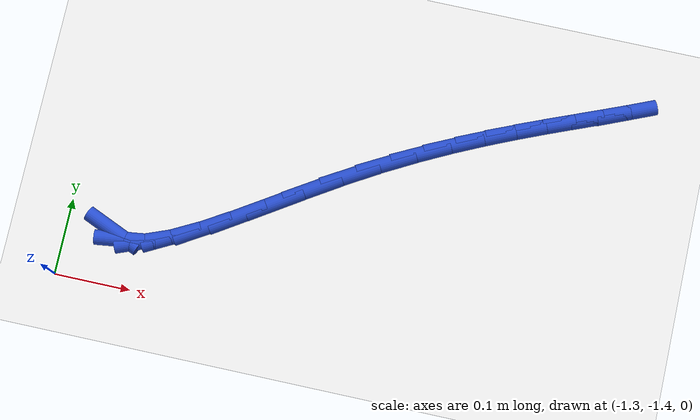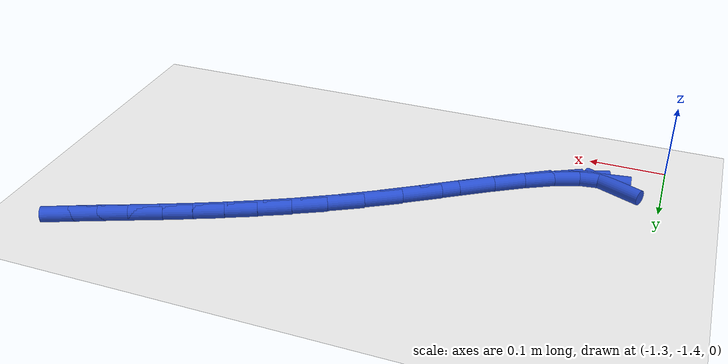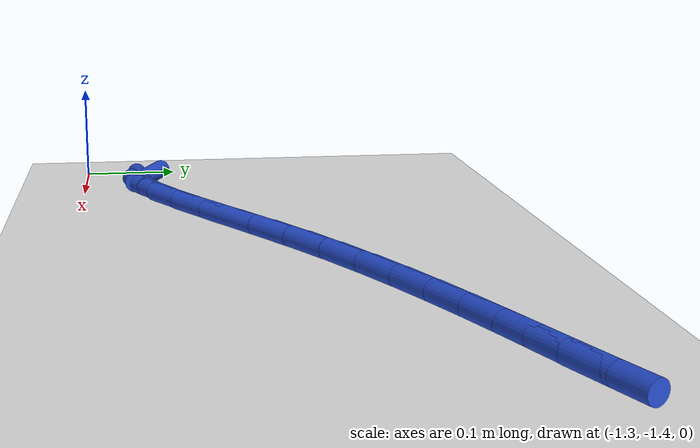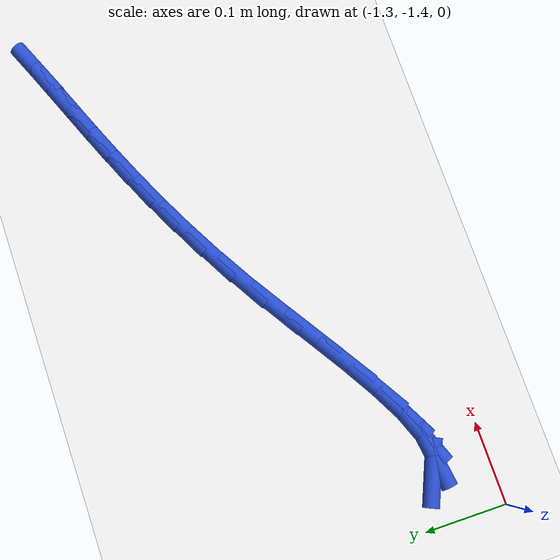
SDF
<sdf version="1.6">
 <world name="default">
  <model name="ground_plane">
   <static>1</static>
   <link name="link">
    <collision name="collision">
     <geometry><plane><normal>0 0 1</normal><size>100 100</size></plane></geometry>
     <surface><friction><ode><mu>100</mu><mu2>50</mu2></ode></friction></surface>
    </collision>
    <visual name="visual">
     <cast_shadows>0</cast_shadows>
     <geometry><plane><normal>0 0 1</normal><size>100 100</size></plane></geometry>
     <material>
      <script><uri>file://media/materials/scripts/gazebo.material</uri><name>Gazebo/WhiteGlow</name></script>
     </material>
    </visual>
   </link>
  </model>
  <model name="line">
   <link name="link_158">
    <pose>-1.2376756816354901 -1.3301424803309438 0.01 0 1.57 -0.4070176500881682</pose>
    <collision name="collision">
     <geometry><cylinder><radius>0.01</radius><length>0.08</length></cylinder></geometry>
    </collision>
    <visual name="visual">
     <material>
      <script><name>Gazebo/Blue</name><uri>file://media/materials/scripts/gazebo.material</uri></script>
     </material>
     <geometry><cylinder><radius>0.01</radius><length>0.08</length></cylinder></geometry>
    </visual>
   </link>
   <link name="link_159">
    <pose>-1.2197020864569703 -1.3378907184763384 0.01 0 1.57 0.13075426205785304</pose>
    <collision name="collision">
     <geometry><cylinder><radius>0.01</radius><length>0.08</length></cylinder></geometry>
    </collision>
    <visual name="visual">
     <material>
      <script><name>Gazebo/Blue</name><uri>file://media/materials/scripts/gazebo.material</uri></script>
     </material>
     <geometry><cylinder><radius>0.01</radius><length>0.08</length></cylinder></geometry>
    </visual>
   </link>
   <link name="link_160">
    <pose>-1.1941362032200915 -1.3345286885596754 0.01 0 1.57 0.37276425491820003</pose>
    <collision name="collision">
     <geometry><cylinder><radius>0.01</radius><length>0.08</length></cylinder></geometry>
    </collision>
    <visual name="visual">
     <material>
      <script><name>Gazebo/Blue</name><uri>file://media/materials/scripts/gazebo.material</uri></script>
     </material>
     <geometry><cylinder><radius>0.01</radius><length>0.08</length></cylinder></geometry>
    </visual>
   </link>
   <link name="link_161">
    <pose>-1.1622740641665366 -1.3220691046603834 0.01 0 1.57 0.48751468851987395</pose>
    <collision name="collision">
     <geometry><cylinder><radius>0.01</radius><length>0.08</length></cylinder></geometry>
    </collision>
    <visual name="visual">
     <material>
      <script><name>Gazebo/Blue</name><uri>file://media/materials/scripts/gazebo.material</uri></script>
     </material>
     <geometry><cylinder><radius>0.01</radius><length>0.08</length></cylinder></geometry>
    </visual>
   </link>
   <link name="link_162">
    <pose>-1.125411701537988 -1.3025246808578905 0.01 0 1.57 0.5454182809382719</pose>
    <collision name="collision">
     <geometry><cylinder><radius>0.01</radius><length>0.08</length></cylinder></geometry>
    </collision>
    <visual name="visual">
     <material>
      <script><name>Gazebo/Blue</name><uri>file://media/materials/scripts/gazebo.material</uri></script>
     </material>
     <geometry><cylinder><radius>0.01</radius><length>0.08</length></cylinder></geometry>
    </visual>
   </link>
   <link name="link_163">
    <pose>-1.0848451475761287 -1.277908131231626 0.01 0 1.57 0.572149772631056</pose>
    <collision name="collision">
     <geometry><cylinder><radius>0.01</radius><length>0.08</length></cylinder></geometry>
    </collision>
    <visual name="visual">
     <material>
      <script><name>Gazebo/Blue</name><uri>file://media/materials/scripts/gazebo.material</uri></script>
     </material>
     <geometry><cylinder><radius>0.01</radius><length>0.08</length></cylinder></geometry>
    </visual>
   </link>
   <link name="link_164">
    <pose>-1.0418704345226402 -1.2502321698610173 0.01 0 1.57 0.5774302985780936</pose>
    <collision name="collision">
     <geometry><cylinder><radius>0.01</radius><length>0.08</length></cylinder></geometry>
    </collision>
    <visual name="visual">
     <material>
      <script><name>Gazebo/Blue</name><uri>file://media/materials/scripts/gazebo.material</uri></script>
     </material>
     <geometry><cylinder><radius>0.01</radius><length>0.08</length></cylinder></geometry>
    </visual>
   </link>
   <link name="link_165">
    <pose>-0.9977835946192073 -1.221509510825494 0.01 0 1.57 0.563779746150697</pose>
    <collision name="collision">
     <geometry><cylinder><radius>0.01</radius><length>0.08</length></cylinder></geometry>
    </collision>
    <visual name="visual">
     <material>
      <script><name>Gazebo/Blue</name><uri>file://media/materials/scripts/gazebo.material</uri></script>
     </material>
     <geometry><cylinder><radius>0.01</radius><length>0.08</length></cylinder></geometry>
    </visual>
   </link>
   <link name="link_166">
    <pose>-0.9538806601022569 -1.1937528681952625 0.01 0 1.57 0.5332006398413002</pose>
    <collision name="collision">
     <geometry><cylinder><radius>0.01</radius><length>0.08</length></cylinder></geometry>
    </collision>
    <visual name="visual">
     <material>
      <script><name>Gazebo/Blue</name><uri>file://media/materials/scripts/gazebo.material</uri></script>
     </material>
     <geometry><cylinder><radius>0.01</radius><length>0.08</length></cylinder></geometry>
    </visual>
   </link>
   <link name="link_167">
    <pose>-0.9112334246804238 -1.1685814241091637 0.01 0 1.57 0.5002824045721845</pose>
    <collision name="collision">
     <geometry><cylinder><radius>0.01</radius><length>0.08</length></cylinder></geometry>
    </collision>
    <visual name="visual">
     <material>
      <script><name>Gazebo/Blue</name><uri>file://media/materials/scripts/gazebo.material</uri></script>
     </material>
     <geometry><cylinder><radius>0.01</radius><length>0.08</length></cylinder></geometry>
    </visual>
   </link>
   <link name="link_168">
    <pose>-0.8700244173554632 -1.146053727655878 0.01 0 1.57 0.4698157043153478</pose>
    <collision name="collision">
     <geometry><cylinder><radius>0.01</radius><length>0.08</length></cylinder></geometry>
    </collision>
    <visual name="visual">
     <material>
      <script><name>Gazebo/Blue</name><uri>file://media/materials/scripts/gazebo.material</uri></script>
     </material>
     <geometry><cylinder><radius>0.01</radius><length>0.08</length></cylinder></geometry>
    </visual>
   </link>
   <link name="link_169">
    <pose>-0.8302157568520249 -1.12584151445855 0.01 0 1.57 0.44266392298235197</pose>
    <collision name="collision">
     <geometry><cylinder><radius>0.01</radius><length>0.08</length></cylinder></geometry>
    </collision>
    <visual name="visual">
     <material>
      <script><name>Gazebo/Blue</name><uri>file://media/materials/scripts/gazebo.material</uri></script>
     </material>
     <geometry><cylinder><radius>0.01</radius><length>0.08</length></cylinder></geometry>
    </visual>
   </link>
   <link name="link_170">
    <pose>-0.791769561894758 -1.107616520140326 0.01 0 1.57 0.41974275592650495</pose>
    <collision name="collision">
     <geometry><cylinder><radius>0.01</radius><length>0.08</length></cylinder></geometry>
    </collision>
    <visual name="visual">
     <material>
      <script><name>Gazebo/Blue</name><uri>file://media/materials/scripts/gazebo.material</uri></script>
     </material>
     <geometry><cylinder><radius>0.01</radius><length>0.08</length></cylinder></geometry>
    </visual>
   </link>
   <link name="link_171">
    <pose>-0.7546479512083152 -1.0910504803243526 0.01 0 1.57 0.40200096960627235</pose>
    <collision name="collision">
     <geometry><cylinder><radius>0.01</radius><length>0.08</length></cylinder></geometry>
    </collision>
    <visual name="visual">
     <material>
      <script><name>Gazebo/Blue</name><uri>file://media/materials/scripts/gazebo.material</uri></script>
     </material>
     <geometry><cylinder><radius>0.01</radius><length>0.08</length></cylinder></geometry>
    </visual>
   </link>
   <link name="link_172">
    <pose>-0.7188130435173451 -1.0758151306337753 0.01 0 1.57 0.39039922513906555</pose>
    <collision name="collision">
     <geometry><cylinder><radius>0.01</radius><length>0.08</length></cylinder></geometry>
    </collision>
    <visual name="visual">
     <material>
      <script><name>Gazebo/Blue</name><uri>file://media/materials/scripts/gazebo.material</uri></script>
     </material>
     <geometry><cylinder><radius>0.01</radius><length>0.08</length></cylinder></geometry>
    </visual>
   </link>
   <link name="link_173">
    <pose>-0.6842269575464978 -1.0615822066917393 0.01 0 1.57 0.3858854906637211</pose>
    <collision name="collision">
     <geometry><cylinder><radius>0.01</radius><length>0.08</length></cylinder></geometry>
    </collision>
    <visual name="visual">
     <material>
      <script><name>Gazebo/Blue</name><uri>file://media/materials/scripts/gazebo.material</uri></script>
     </material>
     <geometry><cylinder><radius>0.01</radius><length>0.08</length></cylinder></geometry>
    </visual>
   </link>
   <link name="link_174">
    <pose>-0.6508518120204239 -1.0480234441213914 0.01 0 1.57 0.38936332193829143</pose>
    <collision name="collision">
     <geometry><cylinder><radius>0.01</radius><length>0.08</length></cylinder></geometry>
    </collision>
    <visual name="visual">
     <material>
      <script><name>Gazebo/Blue</name><uri>file://media/materials/scripts/gazebo.material</uri></script>
     </material>
     <geometry><cylinder><radius>0.01</radius><length>0.08</length></cylinder></geometry>
    </visual>
   </link>
   <link name="link_175">
    <pose>-0.6186497256637729 -1.0348105785458768 0.01 0 1.57 0.40164697558737483</pose>
    <collision name="collision">
     <geometry><cylinder><radius>0.01</radius><length>0.08</length></cylinder></geometry>
    </collision>
    <visual name="visual">
     <material>
      <script><name>Gazebo/Blue</name><uri>file://media/materials/scripts/gazebo.material</uri></script>
     </material>
     <geometry><cylinder><radius>0.01</radius><length>0.08</length></cylinder></geometry>
    </visual>
   </link>
  </model>
 </world>
</sdf>
